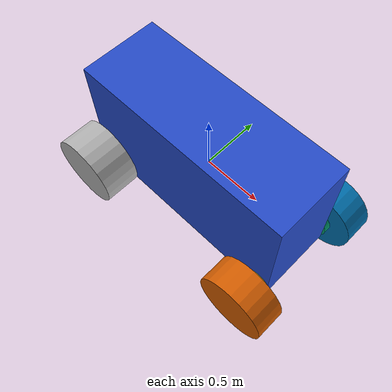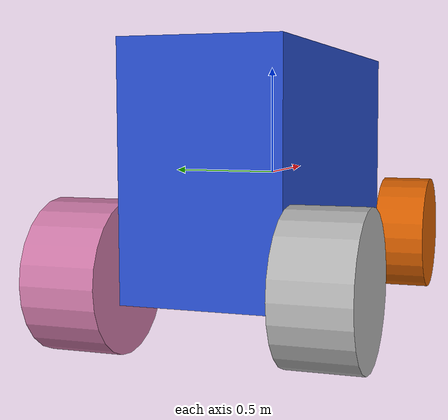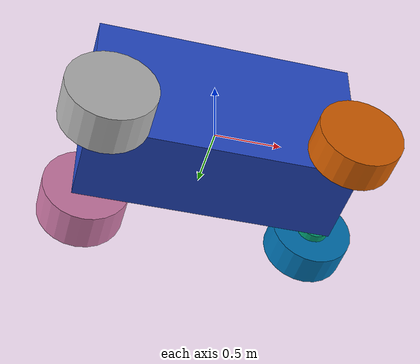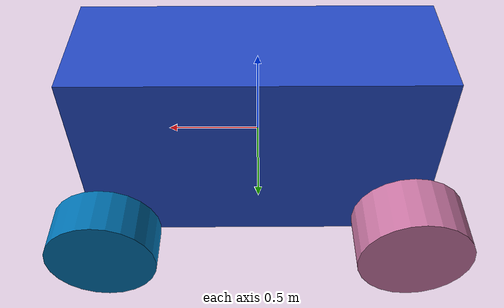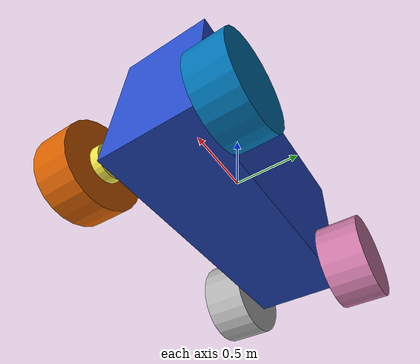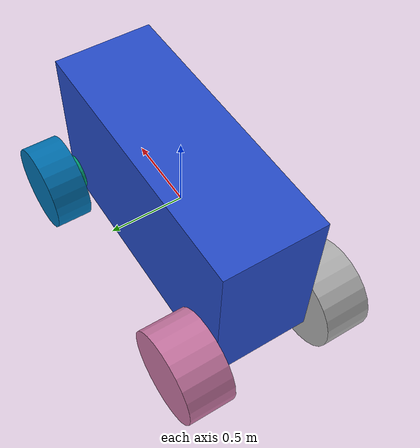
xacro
<?xml version="1.0"?>
<robot xmlns:xacro="http://www.ros.org/wiki/xacro" name="basic_pig">

    <!-- Degree-to-radian conversions -->
    <xacro:property name="degrees_30" value="0.523598776"/>
    <xacro:property name="degrees_45" value="0.785398163"/>
    <xacro:property name="degrees_90" value="1.57079633"/>
    <xacro:property name="degrees_180" value="3.14159265"/>

    <!-- vehicular velocity properties -->
    <xacro:property name="steering_speed" value="1.0472"/> <!-- units of rad/s -->
    <xacro:property name="steering_max_angle" value="${degrees_30}"/> <!-- units of rad -->
    <xacro:property name="steering_min_angle" value="- ${degrees_30}"/> <!-- units of rad -->
    <xacro:property name="traverse_max_speed" value="4.785"/> <!-- units of m/s -->

    <!-- Inertia Generator -->
    <xacro:macro name="default_inertial" params="mass">
        <inertial>
            <mass value="${mass}" />
            <inertia ixx="1.0" ixy="0.0" ixz="0.0" iyy="1.0" iyz="0.0" izz="1.0" />
        </inertial>
    </xacro:macro>

    <!-- Basic Geometry of Body -->
    <xacro:property name="body_length" value="1.91" />
    <xacro:property name="body_width" value="0.680618" />
    <xacro:property name="body_height" value="1.065022" />
    <xacro:property name="body_mass" value="20.3"/>

    <!-- Front Wheel Properties -->
    <xacro:property name="front_wheel_width" value=".254" />
    <xacro:property name="front_wheel_diameter" value="0.605" />
    <xacro:property name="front_wheel_mass" value="20.0"/>

    <!-- Steering Link Properties -->
    <xacro:property name="steering_width" value="${front_wheel_width/4}" />
    <xacro:property name="steering_diameter" value="${front_wheel_diameter/5}" />
    <xacro:property name="steering_mass" value="2.0"/>

    <!-- Rear Wheel Properties -->
    <xacro:property name="rear_wheel_width" value="${front_wheel_width+steering_width}" />
    <xacro:property name="rear_wheel_diameter" value="0.635" />
    <xacro:property name="rear_wheel_mass" value="22.8"/>

    <!-- Dummy Base Link -->
    <link name="base_link" />

    <!-- Actual Base Link -->
    <link name="chassis">
        <visual>
            <origin xyz="0.0 0.0 0.0" rpy="0.0 0.0 0.0"/>
            <geometry>
                <box size="${body_length} ${body_width} ${body_height}"/>
            </geometry>
            <material name="blue" />
        </visual>
        <collision>
            <origin xyz="0.0 0.0 0.0" rpy="0.0 0.0 0.0"/>
            <geometry>
                <box size="${body_length} ${body_width} ${body_height}"/>
            </geometry>
        </collision>
        <xacro:default_inertial mass="${body_mass}"/>
    </link>
    <joint name="base_link_joint" type="fixed">
        <origin xyz="0 0 0.05" rpy="0 0 0" />
        <parent link="base_link" />
        <child link="chassis" />
    </joint>

    <!-- Steering Macro -->
    <xacro:macro name="steering_link" params="prefix reflect">

        <link name="${prefix}_steering_link">
            <visual>
                <origin xyz="0.0 0.0 0.0" rpy="${degrees_90} 0.0 0.0"/>
                <geometry>
                    <cylinder radius="${steering_diameter}" length="${steering_width}"/>
                </geometry>
            </visual>
            <collision>
                <origin xyz="0.0 0.0 0.0" rpy="${degrees_90} 0.0 0.0"/>
                <geometry>
                    <cylinder radius="${steering_diameter}" length="${steering_width}"/>
                </geometry>
            </collision>
            <xacro:default_inertial mass="${steering_mass}"/>
        </link>

        <joint name="${prefix}_steering_joint" type="revolute">
            <parent link="chassis"/>
            <child link="${prefix}_steering_link"/>
            <axis xyz="0.0 0.0 0.1"/>
            <origin xyz="${(body_length / 2)- 0.1} ${(body_width / 2 + steering_width / 2) * reflect} ${-(body_height/2) + 0.1}" rpy="0.0 0.0 0.0"/>
            <limit lower="${steering_min_angle}" upper="${steering_max_angle}" effort="100000.00" velocity="${steering_speed}"/>
            <!-- effort needs to be very high so we are not constrained by the environment-->
        </joint>

        <!-- The Transmission -->
        <transmission name="${prefix}_steering_link_trans">
            <type>transmission_interface/SimpleTransmission</type>
            <joint name="${prefix}_steering_joint">
                <hardwareInterface>hardware_interface/PositionJointInterface</hardwareInterface>
            </joint>
            <actuator name="${prefix}_steering_link_motor">
                <hardwareInterface>hardware_interface/PositionJointInterface</hardwareInterface>
                <mechanicalReduction>1</mechanicalReduction>
            </actuator>
        </transmission>

    </xacro:macro>

    <!-- Front Wheel Macro -->
    <xacro:macro name="front_wheel_link" params="prefix reflect">

        <link name="${prefix}_front_wheel">
            <visual>
                <origin xyz="0.0 0.0 0.0" rpy="${degrees_90} 0.0 0.0"/>
                <geometry>
                    <cylinder radius="${front_wheel_diameter/2}" length="${front_wheel_width}"/>
                </geometry>
            </visual>
            <collision>
                <origin xyz="0.0 0.0 0.0" rpy="${degrees_90} 0.0 0.0"/>
                <geometry>
                    <cylinder radius="${front_wheel_diameter/2}" length="${front_wheel_width}"/>
                </geometry>
                <surface>
                    <friction>
                        <torsional>
                            <coefficient>2.0</coefficient>
                            <surface_radius>.3025</surface_radius>
                            <use_patch_radius>false</use_patch_radius>
                            <ode>
                                <slip>0.5</slip>
                            </ode>
                        </torsional>
                        <ode>
                            <mu>50000.00</mu>
                            <mu2>50000.00</mu2>
                            <fdir1>1.00000 0.00000 0.00000</fdir1>
                            <slip1>0.00000</slip1>
                            <slip2>0.00000</slip2>
                        </ode>
                    </friction>
                    <contact>
                        <ode>
                            <min_depth>0.3025</min_depth>
                        </ode>
                    </contact>
                </surface>
            </collision>
            <xacro:default_inertial mass="${front_wheel_mass}"/>
        </link>

        <joint name="${prefix}_front_axle" type="continuous">
            <parent link="${prefix}_steering_link"/>
            <child link="${prefix}_front_wheel"/>
            <axis xyz="0.0 0.1 0.0"/>
            <origin xyz="0 ${(front_wheel_width/2 + steering_width/2) * reflect} 0"/>
            <limit effort="100000.00" velocity="${traverse_max_speed * 2 / front_wheel_diameter}"/> <!-- units of rad/s -->
            <!-- effort needs to be very high so we are not constrained by the environment-->
        </joint>

        <!-- The Transmission -->
        <transmission name="${prefix}_front_wheel_trans">
            <type>transmission_interface/SimpleTransmission</type>
            <joint name="${prefix}_front_axle">
                <hardwareInterface>hardware_interface/VelocityJointInterface</hardwareInterface>
            </joint>
            <actuator name="${prefix}_front_wheel_motor">
                <hardwareInterface>hardware_interface/VelocityJointInterface</hardwareInterface>
                <mechanicalReduction>1</mechanicalReduction>
            </actuator>
        </transmission>

    </xacro:macro>

    <!-- Rear Wheel Macro -->
    <xacro:macro name="rear_wheel_link" params="prefix reflect">

        <link name="${prefix}_rear_wheel">
            <visual>
                <origin xyz="0.0 0.0 0.0" rpy="${degrees_90} 0.0 0.0"/>
                <geometry>
                    <cylinder radius="${rear_wheel_diameter/2}" length="${rear_wheel_width}"/>
                </geometry>
            </visual>
            <collision>
                <origin xyz="0.0 0.0 0.0" rpy="${degrees_90} 0.0 0.0"/>
                <geometry>
                    <cylinder radius="${rear_wheel_diameter/2}" length="${rear_wheel_width}"/>
                </geometry>
                <surface>
                    <friction>
                        <torsional>
                            <coefficient>2.0</coefficient>
                            <surface_radius>.3175</surface_radius>
                            <use_patch_radius>false</use_patch_radius>
                            <ode>
                                <slip>0.5</slip>
                            </ode>
                        </torsional>
                        <ode>
                            <mu>50000.00</mu>
                            <mu2>50000.00</mu2>
                            <fdir1>1.00000 0.00000 0.00000</fdir1>
                            <slip1>0.00000</slip1>
                            <slip2>0.00000</slip2>
                        </ode>
                    </friction>
                    <contact>
                        <ode>
                            <min_depth>0.3175</min_depth>
                        </ode>
                    </contact>
                </surface>
            </collision>
            <xacro:default_inertial mass="${rear_wheel_mass}"/>
        </link>

        <joint name="${prefix}_rear_axle" type="continuous">
            <parent link="chassis"/>
            <child link="${prefix}_rear_wheel"/>
            <axis xyz="0.0 0.1 0.0"/>
            <origin xyz="${-(body_length/2) + 0.1} ${(rear_wheel_width/2 + body_width/2) * reflect} ${-(body_height/2) + 0.1}"/>
            <limit effort="0.0" velocity="${traverse_max_speed / rear_wheel_diameter}"/> <!-- rolling axle -->
        </joint>

        <!-- The Transmission -->
        <transmission name="${prefix}_rear_wheel_trans">
            <type>transmission_interface/SimpleTransmission</type>
            <joint name="${prefix}_rear_axle">
                <!-- rolling axle -->
                <hardwareInterface>hardware_interface/EffortJointInterface</hardwareInterface>
            </joint>
            <actuator name="${prefix}_rear_wheel_motor">
                <!-- rolling axle -->
                <hardwareInterface>hardware_interface/EffortJointInterface</hardwareInterface>
                <mechanicalReduction>1</mechanicalReduction>
            </actuator>
        </transmission>

    </xacro:macro>

    <xacro:steering_link prefix="left" reflect="1" />
    <xacro:steering_link prefix="right" reflect="-1" />

    <xacro:front_wheel_link prefix="left" reflect="1" />
    <xacro:front_wheel_link prefix="right" reflect="-1" />

    <xacro:rear_wheel_link prefix="left" reflect="1" />
    <xacro:rear_wheel_link prefix="right" reflect="-1" />

    <!-- Gazebo plugin for ROS Control -->
    <gazebo>
        <plugin name="gazebo_ros_control" filename="libgazebo_ros_control.so">
            <robotNamespace>/basic_pig</robotNamespace>
            <robotSimType>gazebo_ros_control/AckermannRobotHWSim</robotSimType> <!-- THIS IS NEW -->
        </plugin>
    </gazebo>
</robot>
